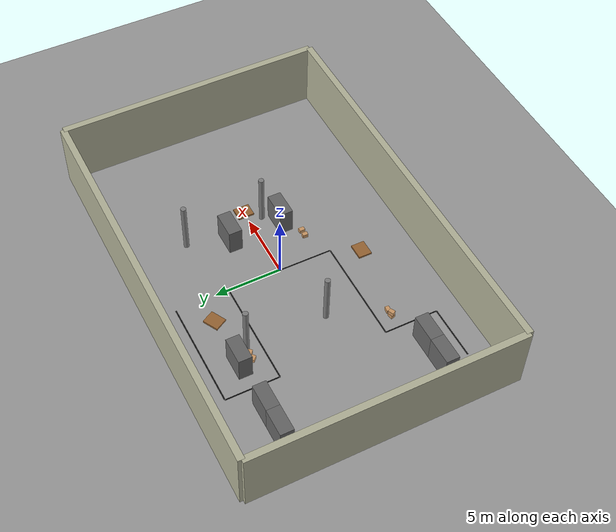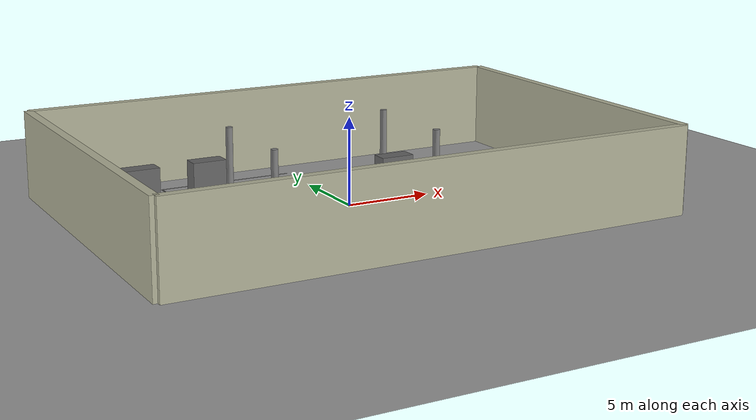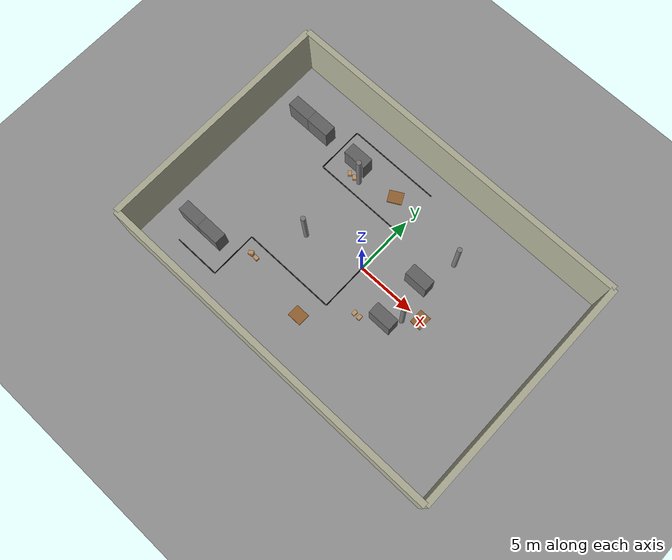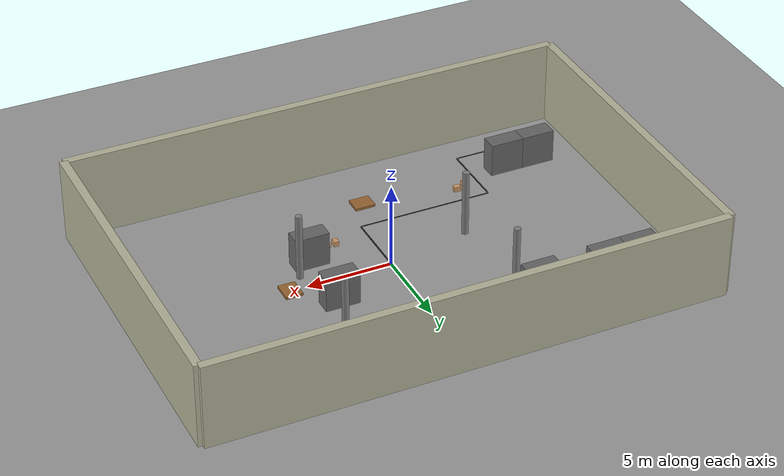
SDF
<?xml version="1.0"?>
<sdf version="1.10">
  <world name="Congested_Warehouse_Line_Follow_Simple">

    <!-- === 1. CORE SIMULATION & SCENE SETUP === -->
    <physics name="1ms" type="ignored">
      <max_step_size>0.001</max_step_size>
      <real_time_factor>1.0</real_time_factor>
    </physics>
    <plugin name='gz::sim::systems::Physics' filename='gz-sim-physics-system'/>
    <plugin name='gz::sim::systems::UserCommands' filename='gz-sim-user-commands-system'/>
    <plugin name='gz::sim::systems::SceneBroadcaster' filename='gz-sim-scene-broadcaster-system'/>
    <plugin name='gz::sim::systems::Contact' filename='gz-sim-contact-system'/>
    <plugin name='gz::sim::systems::Sensors' filename='gz-sim-sensors-system'>
      <render_engine>ogre2</render_engine>
    </plugin>
    <gravity>0 0 -9.8</gravity>
    <atmosphere type='adiabatic'/>
    <scene>
      <ambient>0.5 0.5 0.5 1.0</ambient>
      <background>0.7 0.7 0.7 1</background>
      <shadows>true</shadows>
    </scene>

    <!-- === 2. LIGHTING === -->
    <light type="directional" name="sun">
      <cast_shadows>true</cast_shadows>
      <pose>0 0 20 0 0 0</pose>
      <diffuse>0.8 0.8 0.8 1</diffuse>
      <specular>0.1 0.1 0.1 1</specular>
      <direction>-0.5 0.2 -0.8</direction>
    </light>
     <light type="point" name="overhead_light_1"><pose>-8 8 5 0 0 0</pose><diffuse>0.6 0.6 0.5 1</diffuse><specular>0.1 0.1 0.1 1</specular><attenuation><range>15</range><linear>0.05</linear><constant>0.2</constant><quadratic>0.005</quadratic></attenuation><cast_shadows>false</cast_shadows></light>
     <light type="point" name="overhead_light_2"><pose>8 8 5 0 0 0</pose><diffuse>0.6 0.6 0.5 1</diffuse><specular>0.1 0.1 0.1 1</specular><attenuation><range>15</range><linear>0.05</linear><constant>0.2</constant><quadratic>0.005</quadratic></attenuation><cast_shadows>false</cast_shadows></light>
     <light type="point" name="overhead_light_3"><pose>-8 -8 5 0 0 0</pose><diffuse>0.6 0.6 0.5 1</diffuse><specular>0.1 0.1 0.1 1</specular><attenuation><range>15</range><linear>0.05</linear><constant>0.2</constant><quadratic>0.005</quadratic></attenuation><cast_shadows>false</cast_shadows></light>
     <light type="point" name="overhead_light_4"><pose>8 -8 5 0 0 0</pose><diffuse>0.6 0.6 0.5 1</diffuse><specular>0.1 0.1 0.1 1</specular><attenuation><range>15</range><linear>0.05</linear><constant>0.2</constant><quadratic>0.005</quadratic></attenuation><cast_shadows>false</cast_shadows></light>

    <!-- === 3. WAREHOUSE STRUCTURE (FLOOR & WALLS) === -->
    <model name="ground_plane"><static>true</static><link name="link"><collision name="collision"><geometry><plane><normal>0 0 1</normal><size>30 20</size></plane></geometry></collision><visual name="visual"><geometry><plane><normal>0 0 1</normal><size>30 20</size></plane></geometry><material><ambient>0.6 0.6 0.6 1</ambient> <diffuse>0.6 0.6 0.6 1</diffuse> <specular>0.05 0.05 0.05 1</specular></material></visual></link></model>
    <model name="north_wall"><static>true</static><pose>0 10 2.5 0 0 0</pose><link name="link"><collision name="collision"><geometry><box><size>30 0.5 5</size></box></geometry></collision><visual name="visual"><geometry><box><size>30 0.5 5</size></box></geometry><material><ambient>0.7 0.7 0.6 1</ambient><diffuse>0.7 0.7 0.6 1</diffuse></material></visual></link></model>
    <model name="south_wall"><static>true</static><pose>0 -10 2.5 0 0 0</pose><link name="link"><collision name="collision"><geometry><box><size>30 0.5 5</size></box></geometry></collision><visual name="visual"><geometry><box><size>30 0.5 5</size></box></geometry><material><ambient>0.7 0.7 0.6 1</ambient><diffuse>0.7 0.7 0.6 1</diffuse></material></visual></link></model>
    <model name="east_wall"><static>true</static><pose>15 0 2.5 0 0 0</pose><link name="link"><collision name="collision"><geometry><box><size>0.5 20 5</size></box></geometry></collision><visual name="visual"><geometry><box><size>0.5 20 5</size></box></geometry><material><ambient>0.7 0.7 0.6 1</ambient><diffuse>0.7 0.7 0.6 1</diffuse></material></visual></link></model>
    <model name="west_wall"><static>true</static><pose>-15 0 2.5 0 0 0</pose><link name="link"><collision name="collision"><geometry><box><size>0.5 20 5</size></box></geometry></collision><visual name="visual"><geometry><box><size>0.5 20 5</size></box></geometry><material><ambient>0.7 0.7 0.6 1</ambient><diffuse>0.7 0.7 0.6 1</diffuse></material></visual></link></model>

    <!-- === 4. BLACK LINE PATH === -->
    <model name="line_path"><static>true</static><pose>0 0 0.005 0 0 0</pose>
      <link name="segment_1"><pose>-10 -8 0 0 0 0</pose><visual name="visual"><geometry><box><size>4.0 0.1 0.005</size></box></geometry><material><ambient>0 0 0 1</ambient><diffuse>0 0 0 1</diffuse></material></visual></link>
      <link name="segment_2"><pose>-8 -6 0 0 0 1.5707</pose><visual name="visual"><geometry><box><size>4.0 0.1 0.005</size></box></geometry><material><ambient>0 0 0 1</ambient><diffuse>0 0 0 1</diffuse></material></visual></link>
      <link name="segment_3"><pose>-4 -4 0 0 0 0</pose><visual name="visual"><geometry><box><size>8.0 0.1 0.005</size></box></geometry><material><ambient>0 0 0 1</ambient><diffuse>0 0 0 1</diffuse></material></visual></link>
      <link name="segment_4"><pose>0 0 0 0 0 1.5707</pose><visual name="visual"><geometry><box><size>8.0 0.1 0.005</size></box></geometry><material><ambient>0 0 0 1</ambient><diffuse>0 0 0 1</diffuse></material></visual></link>
      <link name="segment_5"><pose>-4 4 0 0 0 0</pose><visual name="visual"><geometry><box><size>8.0 0.1 0.005</size></box></geometry><material><ambient>0 0 0 1</ambient><diffuse>0 0 0 1</diffuse></material></visual></link>
      <link name="segment_6"><pose>-8 6 0 0 0 1.5707</pose><visual name="visual"><geometry><box><size>4.0 0.1 0.005</size></box></geometry><material><ambient>0 0 0 1</ambient><diffuse>0 0 0 1</diffuse></material></visual></link>
      <link name="segment_7"><pose>-4 8 0 0 0 0</pose><visual name="visual"><geometry><box><size>8.0 0.1 0.005</size></box></geometry><material><ambient>0 0 0 1</ambient><diffuse>0 0 0 1</diffuse></material></visual></link>
    </model>

    <!-- === 5. CONGESTION - SHELVES (Simplified Boxes) === -->
    <model name="shelf_S1"><static>true</static><pose>-12 -6 1.0 0 0 1.5707</pose><link name="link"><collision name="col"><geometry><box><size>1.0 2.0 2.0</size></box></geometry></collision><visual name="vis"><geometry><box><size>1.0 2.0 2.0</size></box></geometry><material><ambient>0.4 0.4 0.4 1</ambient><diffuse>0.4 0.4 0.4 1</diffuse></material></visual></link></model>
    <model name="shelf_S2"><static>true</static><pose>-10 -6 1.0 0 0 1.5707</pose><link name="link"><collision name="col"><geometry><box><size>1.0 2.0 2.0</size></box></geometry></collision><visual name="vis"><geometry><box><size>1.0 2.0 2.0</size></box></geometry><material><ambient>0.4 0.4 0.4 1</ambient><diffuse>0.4 0.4 0.4 1</diffuse></material></visual></link></model>
    <model name="shelf_M1"><static>true</static><pose>4 -2 1.0 0 0 0</pose><link name="link"><collision name="col"><geometry><box><size>2.0 1.0 2.0</size></box></geometry></collision><visual name="vis"><geometry><box><size>2.0 1.0 2.0</size></box></geometry><material><ambient>0.4 0.4 0.4 1</ambient><diffuse>0.4 0.4 0.4 1</diffuse></material></visual></link></model>
    <model name="shelf_M2"><static>true</static><pose>4 2 1.0 0 0 0</pose><link name="link"><collision name="col"><geometry><box><size>2.0 1.0 2.0</size></box></geometry></collision><visual name="vis"><geometry><box><size>2.0 1.0 2.0</size></box></geometry><material><ambient>0.4 0.4 0.4 1</ambient><diffuse>0.4 0.4 0.4 1</diffuse></material></visual></link></model>
    <model name="shelf_T1"><static>true</static><pose>-12 6 1.0 0 0 1.5707</pose><link name="link"><collision name="col"><geometry><box><size>1.0 2.0 2.0</size></box></geometry></collision><visual name="vis"><geometry><box><size>1.0 2.0 2.0</size></box></geometry><material><ambient>0.4 0.4 0.4 1</ambient><diffuse>0.4 0.4 0.4 1</diffuse></material></visual></link></model>
    <model name="shelf_T2"><static>true</static><pose>-10 6 1.0 0 0 1.5707</pose><link name="link"><collision name="col"><geometry><box><size>1.0 2.0 2.0</size></box></geometry></collision><visual name="vis"><geometry><box><size>1.0 2.0 2.0</size></box></geometry><material><ambient>0.4 0.4 0.4 1</ambient><diffuse>0.4 0.4 0.4 1</diffuse></material></visual></link></model>
    <model name="shelf_T3"><static>true</static><pose>-6 6 1.0 0 0 0</pose><link name="link"><collision name="col"><geometry><box><size>2.0 1.0 2.0</size></box></geometry></collision><visual name="vis"><geometry><box><size>2.0 1.0 2.0</size></box></geometry><material><ambient>0.4 0.4 0.4 1</ambient><diffuse>0.4 0.4 0.4 1</diffuse></material></visual></link></model>

    <!-- === 6. CONGESTION - BOXES & PALLETS (Simplified Boxes) === -->
    <model name="box_1"><static>true</static><pose>-7 -5 0.15 0 0 0.2</pose><link name="link"><collision name="col"><geometry><box><size>0.4 0.3 0.3</size></box></geometry></collision><visual name="vis"><geometry><box><size>0.4 0.3 0.3</size></box></geometry><material><ambient>0.8 0.6 0.4 1</ambient><diffuse>0.8 0.6 0.4 1</diffuse></material></visual></link></model>
    <model name="box_2"><static>true</static><pose>-6.5 -5 0.15 0 0 -0.1</pose><link name="link"><collision name="col"><geometry><box><size>0.4 0.3 0.3</size></box></geometry></collision><visual name="vis"><geometry><box><size>0.4 0.3 0.3</size></box></geometry><material><ambient>0.8 0.6 0.4 1</ambient><diffuse>0.8 0.6 0.4 1</diffuse></material></visual></link></model>
    <model name="box_3"><static>true</static><pose>-7 -5 0.45 0 0 0.5</pose><link name="link"><collision name="col"><geometry><box><size>0.4 0.3 0.3</size></box></geometry></collision><visual name="vis"><geometry><box><size>0.4 0.3 0.3</size></box></geometry><material><ambient>0.8 0.6 0.4 1</ambient><diffuse>0.8 0.6 0.4 1</diffuse></material></visual></link></model>
    <model name="box_4"><static>true</static><pose>2 -3 0.15 0 0 1.5</pose><link name="link"><collision name="col"><geometry><box><size>0.4 0.3 0.3</size></box></geometry></collision><visual name="vis"><geometry><box><size>0.4 0.3 0.3</size></box></geometry><material><ambient>0.8 0.6 0.4 1</ambient><diffuse>0.8 0.6 0.4 1</diffuse></material></visual></link></model>
    <model name="box_5"><static>true</static><pose>2.5 -3 0.15 0 0 1.6</pose><link name="link"><collision name="col"><geometry><box><size>0.4 0.3 0.3</size></box></geometry></collision><visual name="vis"><geometry><box><size>0.4 0.3 0.3</size></box></geometry><material><ambient>0.8 0.6 0.4 1</ambient><diffuse>0.8 0.6 0.4 1</diffuse></material></visual></link></model>
    <model name="box_6"><static>true</static><pose>-6 5 0.15 0 0 -0.8</pose><link name="link"><collision name="col"><geometry><box><size>0.4 0.3 0.3</size></box></geometry></collision><visual name="vis"><geometry><box><size>0.4 0.3 0.3</size></box></geometry><material><ambient>0.8 0.6 0.4 1</ambient><diffuse>0.8 0.6 0.4 1</diffuse></material></visual></link></model>
    <model name="box_7"><static>true</static><pose>-5.5 5 0.15 0 0 -0.7</pose><link name="link"><collision name="col"><geometry><box><size>0.4 0.3 0.3</size></box></geometry></collision><visual name="vis"><geometry><box><size>0.4 0.3 0.3</size></box></geometry><material><ambient>0.8 0.6 0.4 1</ambient><diffuse>0.8 0.6 0.4 1</diffuse></material></visual></link></model>

    <model name="pallet_1"><static>true</static><pose>-1 -6 0.075 0 0 0</pose><link name="link"><collision name="col"><geometry><box><size>1.2 1.0 0.15</size></box></geometry></collision><visual name="vis"><geometry><box><size>1.2 1.0 0.15</size></box></geometry><material><ambient>0.6 0.4 0.2 1</ambient><diffuse>0.6 0.4 0.2 1</diffuse></material></visual></link></model>
    <model name="pallet_2"><static>true</static><pose>6 0 0.075 0 0 1.57</pose><link name="link"><collision name="col"><geometry><box><size>1.2 1.0 0.15</size></box></geometry></collision><visual name="vis"><geometry><box><size>1.2 1.0 0.15</size></box></geometry><material><ambient>0.6 0.4 0.2 1</ambient><diffuse>0.6 0.4 0.2 1</diffuse></material></visual></link></model>
    <model name="pallet_3"><static>true</static><pose>-2 6 0.075 0 0 0.5</pose><link name="link"><collision name="col"><geometry><box><size>1.2 1.0 0.15</size></box></geometry></collision><visual name="vis"><geometry><box><size>1.2 1.0 0.15</size></box></geometry><material><ambient>0.6 0.4 0.2 1</ambient><diffuse>0.6 0.4 0.2 1</diffuse></material></visual></link></model>

    <!-- === 7. CONGESTION - PILLARS === -->
    <model name="pillar_1"><static>true</static><pose>-5 -1 2 0 0 0</pose><link name="link"><collision name="col"><geometry><cylinder><radius>0.2</radius><length>4</length></cylinder></geometry></collision><visual name="vis"><geometry><cylinder><radius>0.2</radius><length>4</length></cylinder></geometry><material><ambient>0.5 0.5 0.5 1</ambient><diffuse>0.5 0.5 0.5 1</diffuse></material></visual></link></model>
    <model name="pillar_2"><static>true</static><pose>5 -1 2 0 0 0</pose><link name="link"><collision name="col"><geometry><cylinder><radius>0.2</radius><length>4</length></cylinder></geometry></collision><visual name="vis"><geometry><cylinder><radius>0.2</radius><length>4</length></cylinder></geometry><material><ambient>0.5 0.5 0.5 1</ambient><diffuse>0.5 0.5 0.5 1</diffuse></material></visual></link></model>
    <model name="pillar_3"><static>true</static><pose>-5 5 2 0 0 0</pose><link name="link"><collision name="col"><geometry><cylinder><radius>0.2</radius><length>4</length></cylinder></geometry></collision><visual name="vis"><geometry><cylinder><radius>0.2</radius><length>4</length></cylinder></geometry><material><ambient>0.5 0.5 0.5 1</ambient><diffuse>0.5 0.5 0.5 1</diffuse></material></visual></link></model>
    <model name="pillar_4"><static>true</static><pose>5 5 2 0 0 0</pose><link name="link"><collision name="col"><geometry><cylinder><radius>0.2</radius><length>4</length></cylinder></geometry></collision><visual name="vis"><geometry><cylinder><radius>0.2</radius><length>4</length></cylinder></geometry><material><ambient>0.5 0.5 0.5 1</ambient><diffuse>0.5 0.5 0.5 1</diffuse></material></visual></link></model>

  </world>
</sdf>
